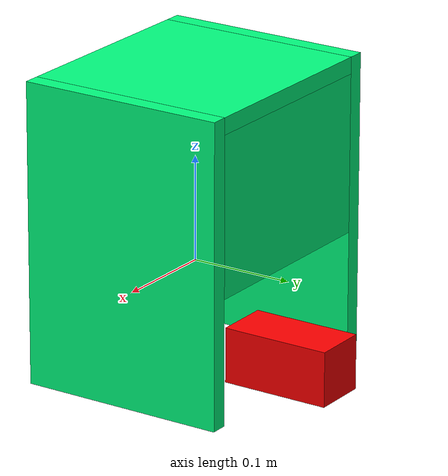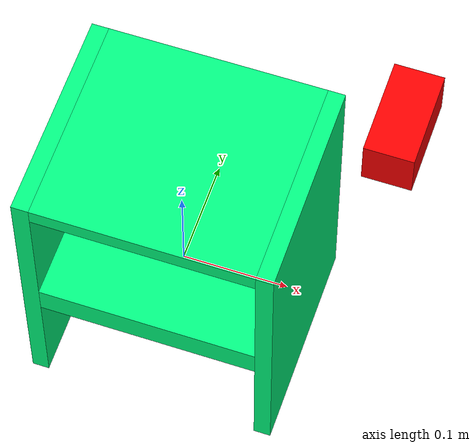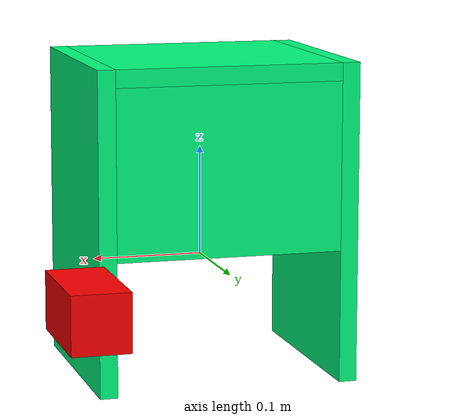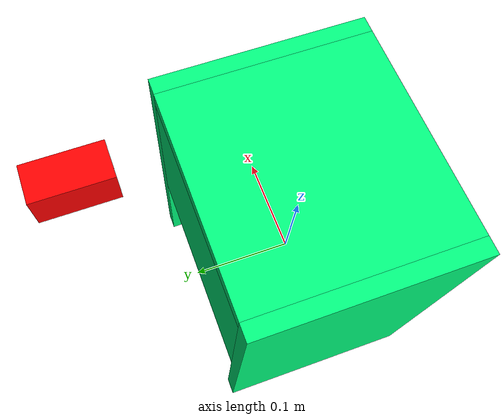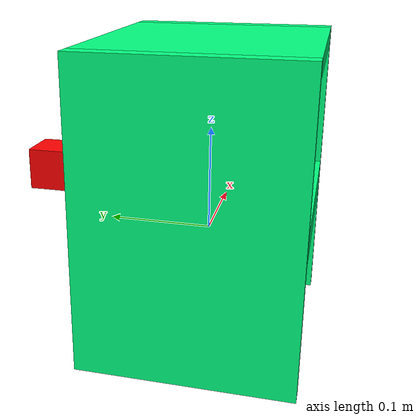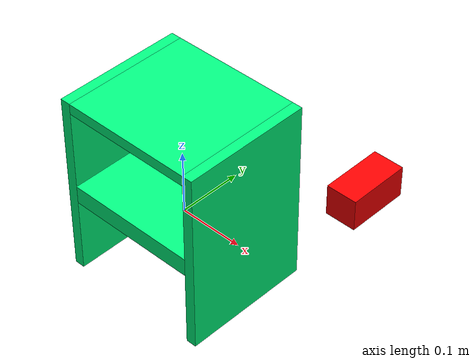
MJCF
<mujoco model="target_box">
    <worldbody>

        <body name="picked_item" pos="0 0.0 0.0" quat="1 0 0 0">
                <geom name="picked_item" pos="0.15 0.2 0.0" size="0.025 0.05 0.025" rgba="1 0 0 1.0" type="box" mass="0.05" friction="0.3 0.3 0.3" priority="1"/>
                <joint name= "picked_item_joint" type="free"/>
        </body>

        <body name="target_box" pos="0.0 0.0 0.0" quat="1 0 0 0">
            <geom name="target_box0" pos="-0.11 0 0.04" size="0.008 0.1 0.144" rgba="0 1 0.5 1.0" type="box" mass=".05" conaffinity="1" condim="4" contype="1"/>
            <geom name="target_box1" pos="0.11 0 0.04" size="0.008 0.1 0.144" rgba="0 1 0.5 1.0" type="box" mass=".05" conaffinity="1" condim="4" contype="1"/>
            <geom name="target_box2" pos="0 0.092 0.092" size="0.102 0.008 0.076" rgba="0 1 0.5 1.0" type="box" mass=".05" conaffinity="1" condim="4" contype="1"/>
            <geom name="target_box3" pos="0 -0.008 0.03" size="0.102 0.092 0.014" rgba="0 1 0.5 1.0" type="box" mass=".05" conaffinity="1" condim="4" contype="1"/>
            <geom name="target_box4" pos="0 0 0.176" size="0.102 0.1 0.008" rgba="0 1 0.5 1.0" type="box" mass=".05" conaffinity="1" condim="4" contype="1"/>
        </body>
    </worldbody>
</mujoco>
